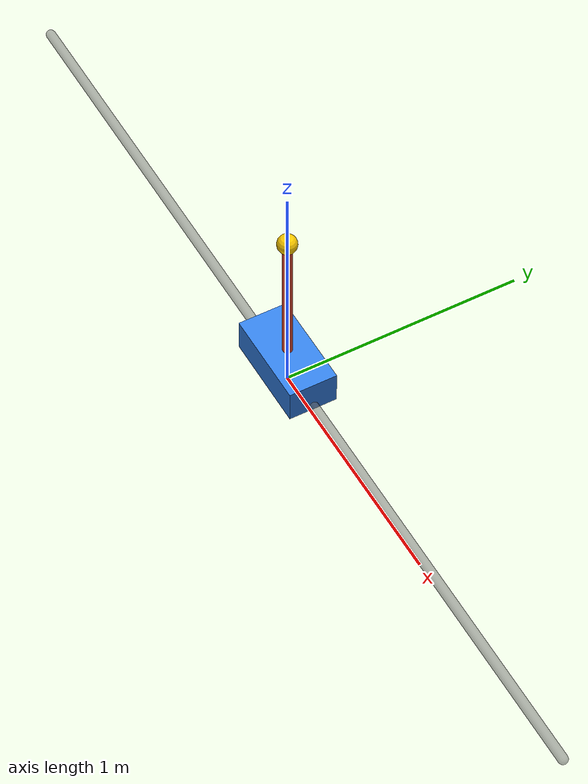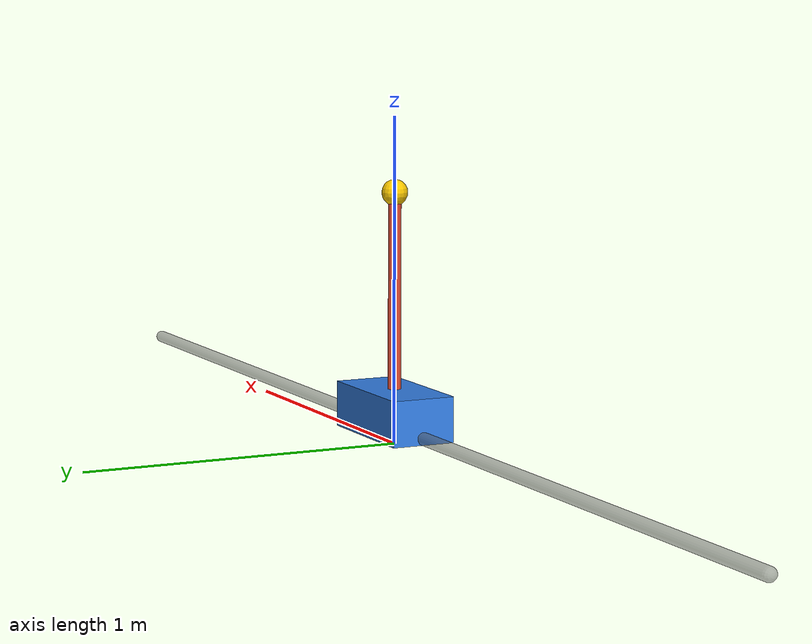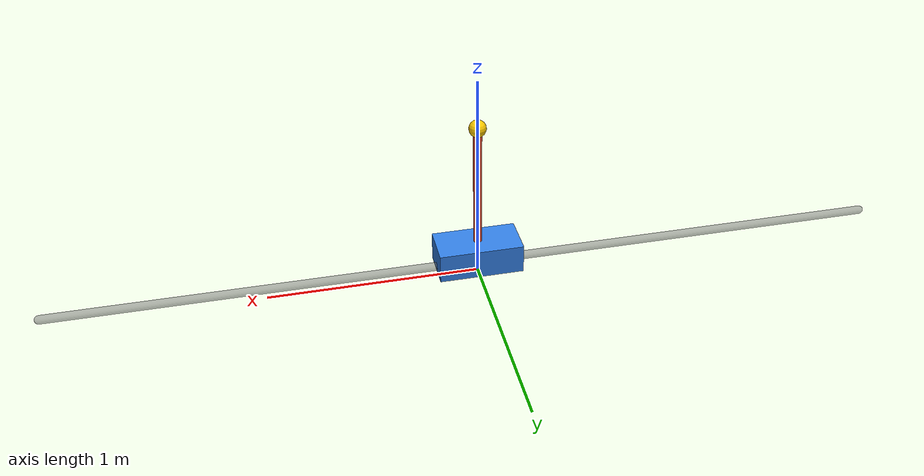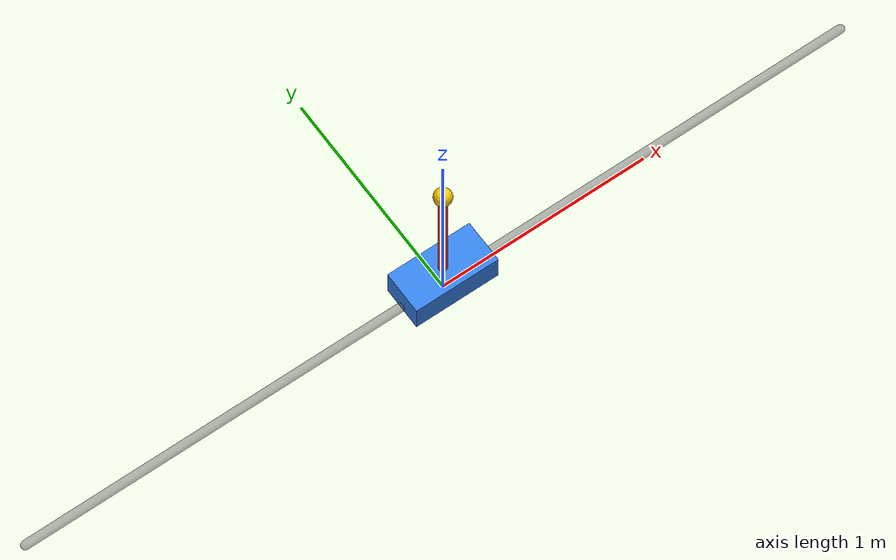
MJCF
<mujoco model="cartpole">

  <compiler angle="radian" />

  <option gravity="0 0 -9.81" timestep="0.01" integrator="RK4" />

  <default>
    <joint damping="0.05" />
    <geom contype="1" conaffinity="1" friction="0.8 0.01 0.001" />
  </default>

  <worldbody>

    <!-- 레일 (시각적 참조용) -->
    <geom name="rail" type="capsule" pos="0 0 0.05"
          size="0.02 2.0" euler="0 1.5708 0"
          rgba="0.4 0.4 0.4 0.5" contype="0" conaffinity="0" />

    <!-- 카트 -->
    <body name="cart" pos="0 0 0.1">
      <!-- 카트가 x축을 따라 슬라이드 -->
      <joint name="slider" type="slide" axis="1 0 0"
             range="-2.4 2.4" damping="0.1" />
      <geom name="cart_geom" type="box" size="0.2 0.1 0.07"
            rgba="0.2 0.5 0.9 1.0" mass="1.0" />

      <!-- 폴 (카트 위에서 회전) -->
      <body name="pole" pos="0 0 0.07">
        <!-- 폴이 카트에서 힌지 회전 -->
        <joint name="hinge" type="hinge" axis="0 1 0"
               range="-3.14159 3.14159" damping="0.05" />
        <!-- 폴 (원점에서 위로 0.3m) -->
        <geom name="pole_geom" type="capsule" fromto="0 0 0  0 0 0.6"
              size="0.02" rgba="0.9 0.3 0.2 1.0" mass="0.1" />
        <!-- 폴 끝 질량점 (시각화용) -->
        <geom name="pole_tip" type="sphere" pos="0 0 0.6"
              size="0.04" rgba="1.0 0.8 0.0 1.0" mass="0.01" />
      </body>
    </body>

  </worldbody>

  <actuator>
    <!-- 카트에 수평 힘 적용 (force actuator) -->
    <motor name="slide_motor" joint="slider"
           gear="1" ctrllimited="true" ctrlrange="-10 10" />
  </actuator>

  <sensor>
    <jointpos name="cart_pos"  joint="slider" />
    <jointvel name="cart_vel"  joint="slider" />
    <jointpos name="pole_angle" joint="hinge" />
    <jointvel name="pole_vel"   joint="hinge" />
  </sensor>

</mujoco>
